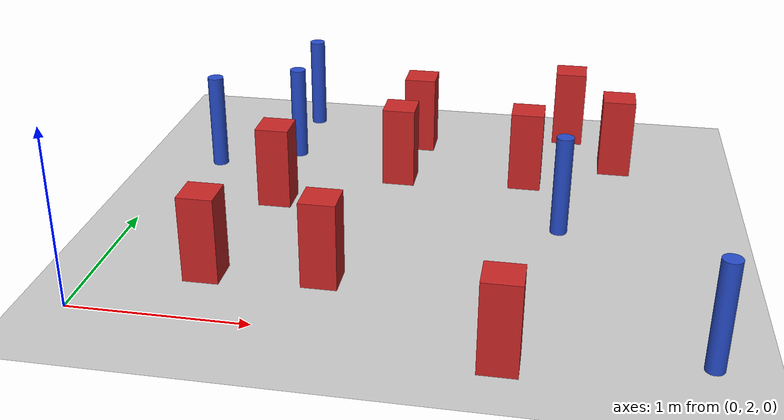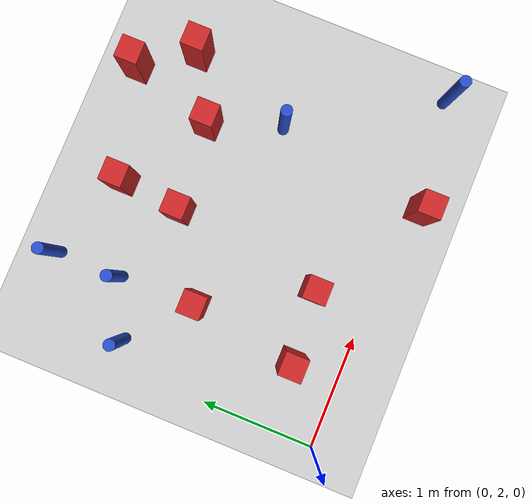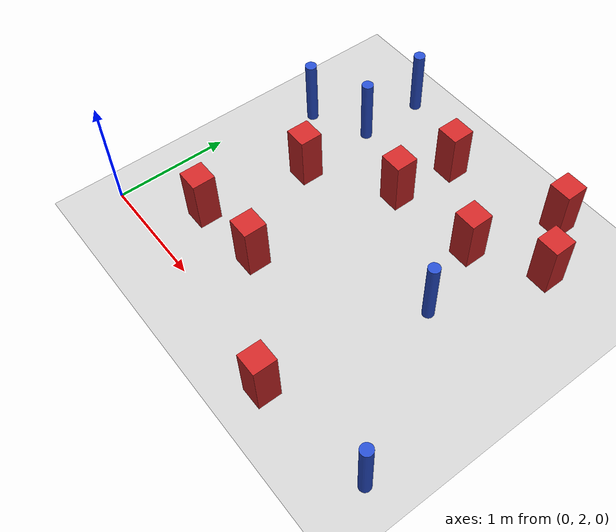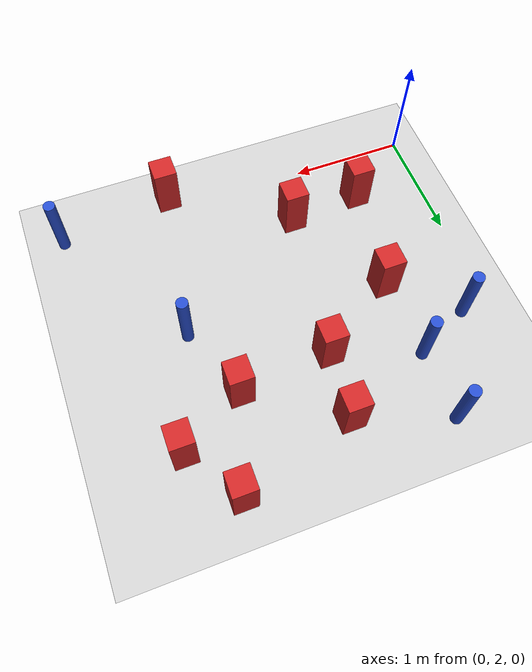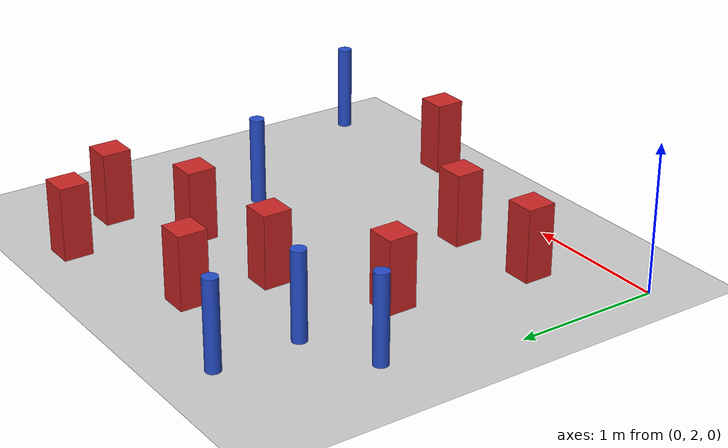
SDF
<sdf version="1.6">
 <world name="default">
  <model name="ground_plane">
   <static>1</static>
   <link name="link">
    <collision name="collision">
     <geometry><plane><normal>0 0 1</normal><size>100 100</size></plane></geometry>
     <surface><friction><ode><mu>100</mu><mu2>50</mu2></ode></friction></surface>
    </collision>
    <visual name="visual">
     <cast_shadows>0</cast_shadows>
     <geometry><plane><normal>0 0 1</normal><size>100 100</size></plane></geometry>
     <material>
      <ambient>1.0 1.0 1.0 1.0</ambient>
      <diffuse>0.8 0.8 0.8 1.0</diffuse>
      <specular>0.01 0.01 0.01 1.000000</specular>
     </material>
    </visual>
   </link>
  </model>
  <model name="square_post_obstacle7">
   <static>true</static>
   <pose>2.50515203167 4.65884370068 1.91545236811e-07 -7.35059704564e-06 1.12565212e-07 2.39332434364e-05</pose>
   <link name="link">
    <pose>0 0 0.25 0 -0 0</pose>
    <inertial>
     <mass>100</mass>
     <inertia>
      <ixx>0.166667</ixx>
      <ixy>0</ixy>
      <ixz>0</ixz>
      <iyy>0.166667</iyy>
      <iyz>0</iyz>
      <izz>0.166667</izz>
     </inertia>
    </inertial>
    <collision name="collision"><geometry><box><size>.2 .2 .5</size></box></geometry></collision>
    <visual name="visual">
     <geometry><box><size>.2 .2 .5</size></box></geometry>
     <material>
      <script><name>Gazebo/Red</name><uri>file://media/materials/scripts/gazebo.material</uri></script>
     </material>
    </visual>
   </link>
  </model>
  <model name="square_post_obstacle10">
   <static>true</static>
   <pose>0.76890209243 3.38052567171 1.91545236811e-07 -7.35059704564e-06 1.12565212e-07 2.39332434364e-05</pose>
   <link name="link">
    <pose>0 0 0.25 0 -0 0</pose>
    <inertial>
     <mass>100</mass>
     <inertia>
      <ixx>0.166667</ixx>
      <ixy>0</ixy>
      <ixz>0</ixz>
      <iyy>0.166667</iyy>
      <iyz>0</iyz>
      <izz>0.166667</izz>
     </inertia>
    </inertial>
    <collision name="collision"><geometry><box><size>.2 .2 .5</size></box></geometry></collision>
    <visual name="visual">
     <geometry><box><size>.2 .2 .5</size></box></geometry>
     <material>
      <script><name>Gazebo/Red</name><uri>file://media/materials/scripts/gazebo.material</uri></script>
     </material>
    </visual>
   </link>
  </model>
  <model name="pole_obstacle38">
   <static>true</static>
   <pose>2.48764823584 3.26178441346 7.38925637345e-09 -8.47170692798e-08 1.24976764939e-08 -1.74513093025e-07</pose>
   <link name="link">
    <pose>0 0 0.3 0 -0 0</pose>
    <inertial>
     <mass>1</mass>
     <inertia><ixx>0.145833</ixx><ixy>0</ixy><ixz>0</ixz><iyy>0.145833</iyy><iyz>0</iyz><izz>0.125</izz></inertia>
    </inertial>
    <collision name="collision">
     <geometry><cylinder><radius>0.05</radius><length>.6</length></cylinder></geometry>
    </collision>
    <visual name="visual">
     <geometry><cylinder><radius>0.05</radius><length>.6</length></cylinder></geometry>
     <material>
      <script><name>Gazebo/Blue</name><uri>file://media/materials/scripts/gazebo.material</uri></script>
     </material>
    </visual>
   </link>
  </model>
  <model name="square_post_obstacle48">
   <static>true</static>
   <pose>1.46260537371 3.81581991061 1.91545236811e-07 -7.35059704564e-06 1.12565212e-07 2.39332434364e-05</pose>
   <link name="link">
    <pose>0 0 0.25 0 -0 0</pose>
    <inertial>
     <mass>100</mass>
     <inertia>
      <ixx>0.166667</ixx>
      <ixy>0</ixy>
      <ixz>0</ixz>
      <iyy>0.166667</iyy>
      <iyz>0</iyz>
      <izz>0.166667</izz>
     </inertia>
    </inertial>
    <collision name="collision"><geometry><box><size>.2 .2 .5</size></box></geometry></collision>
    <visual name="visual">
     <geometry><box><size>.2 .2 .5</size></box></geometry>
     <material>
      <script><name>Gazebo/Red</name><uri>file://media/materials/scripts/gazebo.material</uri></script>
     </material>
    </visual>
   </link>
  </model>
  <model name="square_post_obstacle49">
   <static>true</static>
   <pose>2.25460048533 3.88420543305 1.91545236811e-07 -7.35059704564e-06 1.12565212e-07 2.39332434364e-05</pose>
   <link name="link">
    <pose>0 0 0.25 0 -0 0</pose>
    <inertial>
     <mass>100</mass>
     <inertia>
      <ixx>0.166667</ixx>
      <ixy>0</ixy>
      <ixz>0</ixz>
      <iyy>0.166667</iyy>
      <iyz>0</iyz>
      <izz>0.166667</izz>
     </inertia>
    </inertial>
    <collision name="collision"><geometry><box><size>.2 .2 .5</size></box></geometry></collision>
    <visual name="visual">
     <geometry><box><size>.2 .2 .5</size></box></geometry>
     <material>
      <script><name>Gazebo/Red</name><uri>file://media/materials/scripts/gazebo.material</uri></script>
     </material>
    </visual>
   </link>
  </model>
  <model name="pole_obstacle79">
   <static>true</static>
   <pose>0.728909934405 4.6613073984 7.38925637345e-09 -8.471706928e-08 1.24976765086e-08 -1.74513093015e-07</pose>
   <link name="link">
    <pose>0 0 0.3 0 -0 0</pose>
    <inertial>
     <mass>1</mass>
     <inertia><ixx>0.145833</ixx><ixy>0</ixy><ixz>0</ixz><iyy>0.145833</iyy><iyz>0</iyz><izz>0.125</izz></inertia>
    </inertial>
    <collision name="collision">
     <geometry><cylinder><radius>0.05</radius><length>.6</length></cylinder></geometry>
    </collision>
    <visual name="visual">
     <geometry><cylinder><radius>0.05</radius><length>.6</length></cylinder></geometry>
     <material>
      <script><name>Gazebo/Blue</name><uri>file://media/materials/scripts/gazebo.material</uri></script>
     </material>
    </visual>
   </link>
  </model>
  <model name="square_post_obstacle67">
   <static>true</static>
   <pose>1.25568139474 2.48988867686 1.91545236811e-07 -7.35059704564e-06 1.12565212e-07 2.39332434364e-05</pose>
   <link name="link">
    <pose>0 0 0.25 0 -0 0</pose>
    <inertial>
     <mass>100</mass>
     <inertia>
      <ixx>0.166667</ixx>
      <ixy>0</ixy>
      <ixz>0</ixz>
      <iyy>0.166667</iyy>
      <iyz>0</iyz>
      <izz>0.166667</izz>
     </inertia>
    </inertial>
    <collision name="collision"><geometry><box><size>.2 .2 .5</size></box></geometry></collision>
    <visual name="visual">
     <geometry><box><size>.2 .2 .5</size></box></geometry>
     <material>
      <script><name>Gazebo/Red</name><uri>file://media/materials/scripts/gazebo.material</uri></script>
     </material>
    </visual>
   </link>
  </model>
  <model name="square_post_obstacle75">
   <static>true</static>
   <pose>1.51665894973 4.37676680655 1.91545236811e-07 -7.35059704564e-06 1.12565212e-07 2.39332434364e-05</pose>
   <link name="link">
    <pose>0 0 0.25 0 -0 0</pose>
    <inertial>
     <mass>100</mass>
     <inertia>
      <ixx>0.166667</ixx>
      <ixy>0</ixy>
      <ixz>0</ixz>
      <iyy>0.166667</iyy>
      <iyz>0</iyz>
      <izz>0.166667</izz>
     </inertia>
    </inertial>
    <collision name="collision"><geometry><box><size>.2 .2 .5</size></box></geometry></collision>
    <visual name="visual">
     <geometry><box><size>.2 .2 .5</size></box></geometry>
     <material>
      <script><name>Gazebo/Red</name><uri>file://media/materials/scripts/gazebo.material</uri></script>
     </material>
    </visual>
   </link>
  </model>
  <model name="square_post_obstacle98">
   <static>true</static>
   <pose>2.248269447 1.88332826396 1.91545236811e-07 -7.35059704564e-06 1.12565212e-07 2.39332434364e-05</pose>
   <link name="link">
    <pose>0 0 0.25 0 -0 0</pose>
    <inertial>
     <mass>100</mass>
     <inertia>
      <ixx>0.166667</ixx>
      <ixy>0</ixy>
      <ixz>0</ixz>
      <iyy>0.166667</iyy>
      <iyz>0</iyz>
      <izz>0.166667</izz>
     </inertia>
    </inertial>
    <collision name="collision"><geometry><box><size>.2 .2 .5</size></box></geometry></collision>
    <visual name="visual">
     <geometry><box><size>.2 .2 .5</size></box></geometry>
     <material>
      <script><name>Gazebo/Red</name><uri>file://media/materials/scripts/gazebo.material</uri></script>
     </material>
    </visual>
   </link>
  </model>
  <model name="pole_obstacle116">
   <static>true</static>
   <pose>0.248300868231 3.84309872755 7.38925637345e-09 -8.47170692792e-08 1.24976764352e-08 -1.74513093043e-07</pose>
   <link name="link">
    <pose>0 0 0.3 0 -0 0</pose>
    <inertial>
     <mass>1</mass>
     <inertia><ixx>0.145833</ixx><ixy>0</ixy><ixz>0</ixz><iyy>0.145833</iyy><iyz>0</iyz><izz>0.125</izz></inertia>
    </inertial>
    <collision name="collision">
     <geometry><cylinder><radius>0.05</radius><length>.6</length></cylinder></geometry>
    </collision>
    <visual name="visual">
     <geometry><cylinder><radius>0.05</radius><length>.6</length></cylinder></geometry>
     <material>
      <script><name>Gazebo/Blue</name><uri>file://media/materials/scripts/gazebo.material</uri></script>
     </material>
    </visual>
   </link>
  </model>
  <model name="pole_obstacle161">
   <static>true</static>
   <pose>3.25003727473 2.02201295908 7.38925637345e-09 -8.47170692799e-08 1.24976765087e-08 -1.74513093015e-07</pose>
   <link name="link">
    <pose>0 0 0.3 0 -0 0</pose>
    <inertial>
     <mass>1</mass>
     <inertia><ixx>0.145833</ixx><ixy>0</ixy><ixz>0</ixz><iyy>0.145833</iyy><iyz>0</iyz><izz>0.125</izz></inertia>
    </inertial>
    <collision name="collision">
     <geometry><cylinder><radius>0.05</radius><length>.6</length></cylinder></geometry>
    </collision>
    <visual name="visual">
     <geometry><cylinder><radius>0.05</radius><length>.6</length></cylinder></geometry>
     <material>
      <script><name>Gazebo/Blue</name><uri>file://media/materials/scripts/gazebo.material</uri></script>
     </material>
    </visual>
   </link>
  </model>
  <model name="square_post_obstacle161">
   <static>true</static>
   <pose>2.81438187715 4.19852938892 1.91545236811e-07 -7.35059704564e-06 1.12565212e-07 2.39332434364e-05</pose>
   <link name="link">
    <pose>0 0 0.25 0 -0 0</pose>
    <inertial>
     <mass>100</mass>
     <inertia>
      <ixx>0.166667</ixx>
      <ixy>0</ixy>
      <ixz>0</ixz>
      <iyy>0.166667</iyy>
      <iyz>0</iyz>
      <izz>0.166667</izz>
     </inertia>
    </inertial>
    <collision name="collision"><geometry><box><size>.2 .2 .5</size></box></geometry></collision>
    <visual name="visual">
     <geometry><box><size>.2 .2 .5</size></box></geometry>
     <material>
      <script><name>Gazebo/Red</name><uri>file://media/materials/scripts/gazebo.material</uri></script>
     </material>
    </visual>
   </link>
  </model>
  <model name="square_post_obstacle206">
   <static>true</static>
   <pose>0.617924201021 2.44163004359 1.91545236811e-07 -7.35059704564e-06 1.12565212e-07 2.39332434364e-05</pose>
   <link name="link">
    <pose>0 0 0.25 0 -0 0</pose>
    <inertial>
     <mass>100</mass>
     <inertia>
      <ixx>0.166667</ixx>
      <ixy>0</ixy>
      <ixz>0</ixz>
      <iyy>0.166667</iyy>
      <iyz>0</iyz>
      <izz>0.166667</izz>
     </inertia>
    </inertial>
    <collision name="collision"><geometry><box><size>.2 .2 .5</size></box></geometry></collision>
    <visual name="visual">
     <geometry><box><size>.2 .2 .5</size></box></geometry>
     <material>
      <script><name>Gazebo/Red</name><uri>file://media/materials/scripts/gazebo.material</uri></script>
     </material>
    </visual>
   </link>
  </model>
  <model name="pole_obstacle225">
   <static>true</static>
   <pose>0.733980923863 4.07672326397 7.38925637345e-09 -8.471706928e-08 1.24976765086e-08 -1.74513093015e-07</pose>
   <link name="link">
    <pose>0 0 0.3 0 -0 0</pose>
    <inertial>
     <mass>1</mass>
     <inertia><ixx>0.145833</ixx><ixy>0</ixy><ixz>0</ixz><iyy>0.145833</iyy><iyz>0</iyz><izz>0.125</izz></inertia>
    </inertial>
    <collision name="collision">
     <geometry><cylinder><radius>0.05</radius><length>.6</length></cylinder></geometry>
    </collision>
    <visual name="visual">
     <geometry><cylinder><radius>0.05</radius><length>.6</length></cylinder></geometry>
     <material>
      <script><name>Gazebo/Blue</name><uri>file://media/materials/scripts/gazebo.material</uri></script>
     </material>
    </visual>
   </link>
  </model>
 </world>
</sdf>
